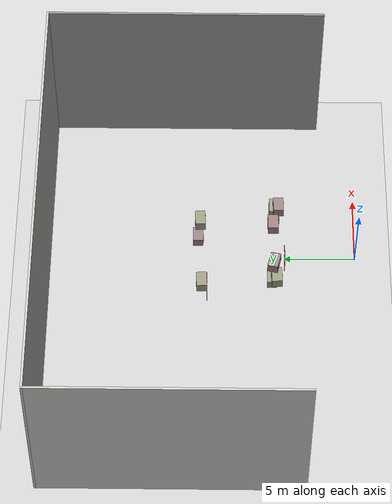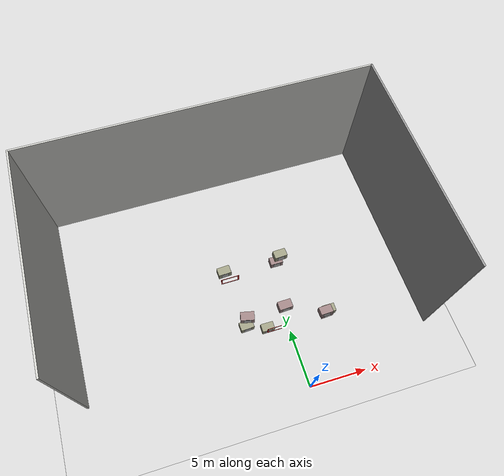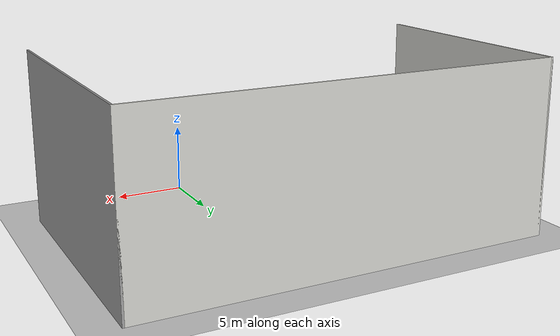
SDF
<sdf version="1.5">
 <world name="default">
  <light name="sun" type="directional">
   <pose>0 0 10 0 -0 0</pose>
   <diffuse>0.8 0.8 0.8 1</diffuse>
   <specular>0.2 0.2 0.2 1</specular>
   <attenuation>
    <range>1000</range>
    <constant>0.9</constant>
    <linear>0.01</linear>
    <quadratic>0.001</quadratic>
   </attenuation>
   <direction>-0.5 0.1 -0.9</direction>
  </light>
  <model name="ground_plane">
   <static>1</static>
   <link name="link">
    <collision name="collision">
     <geometry><plane><normal>0 0 1</normal><size>100 100</size></plane></geometry>
     <surface><friction><ode><mu>100</mu><mu2>50</mu2></ode></friction></surface>
    </collision>
    <visual name="visual">
     <cast_shadows>0</cast_shadows>
     <geometry><plane><normal>0 0 1</normal><size>100 100</size></plane></geometry>
     <material>
      <script><uri>file://media/materials/scripts/gazebo.material</uri><name>Gazebo/Grey</name></script>
     </material>
    </visual>
   </link>
  </model>
  <gravity>0 0 -9.8</gravity>
  <magnetic_field>6e-06 2.3e-05 -4.2e-05</magnetic_field>
  <atmosphere type="adiabatic"/>
  <physics name="default_physics" default="0" type="ode">
   <max_step_size>0.001</max_step_size>
   <real_time_factor>1</real_time_factor>
   <real_time_update_rate>1000</real_time_update_rate>
  </physics>
  <scene><ambient>0.4 0.4 0.4 1</ambient><background>0.7 0.7 0.7 1</background><shadows>1</shadows></scene>
  <spherical_coordinates>
   <surface_model>EARTH_WGS84</surface_model>
   <latitude_deg>0</latitude_deg>
   <longitude_deg>0</longitude_deg>
   <elevation>0</elevation>
   <heading_deg>0</heading_deg>
  </spherical_coordinates>
  <model name="medium_box_qr2">
   <pose>-1.87258 5.8039 0.349577 -0.001201 -0 3.13683</pose>
   <static>0</static>
   <link name="link">
    <inertial>
     <mass>30</mass>
     <inertia><ixx>1</ixx><ixy>0</ixy><ixz>0</ixz><iyy>1</iyy><iyz>0</iyz><izz>1</izz></inertia>
    </inertial>
    <collision name="collision">
     <geometry><box><size>1.1 0.7 0.7</size></box></geometry>
     <surface><contact><ode><max_vel>0.1</max_vel><min_depth>0.001</min_depth></ode></contact></surface>
    </collision>
    <visual name="visual">
     <geometry><box><size>1.1 0.7 0.7</size></box></geometry>
     <material>
      <lighting>1</lighting>
      <script><uri>file://media/materials/scripts/gazebo.material</uri><name>Gazebo/Grey</name></script>
      <shader type="pixel"><normal_map>__default__</normal_map></shader>
      <ambient>0.6 0.6 0.5 1</ambient>
      <diffuse>0.3 0.3 0.3 1</diffuse>
      <specular>0.01 0.01 0.01 1</specular>
      <emissive>0 0 0 1</emissive>
     </material>
    </visual>
    <visual name="visual_qr">
     <pose>0 0.36 0 0 -0 0</pose>
     <geometry><box><size>0.6 0.005 0.6</size></box></geometry>
     <material>
      <script>
       <uri>model://medium_box_qr2/materials/scripts</uri>
       <uri>model://medium_box_qr2/materials/textures</uri>
       <name>QR_code/qr1</name>
      </script>
     </material>
    </visual>
   </link>
  </model>
  <model name="medium_box_qr">
   <pose>3.13645 5.36923 1.91264 4e-06 -0.001814 -3.10671</pose>
   <static>0</static>
   <link name="link">
    <inertial>
     <mass>30</mass>
     <inertia><ixx>1</ixx><ixy>0</ixy><ixz>0</ixz><iyy>1</iyy><iyz>0</iyz><izz>1</izz></inertia>
    </inertial>
    <collision name="collision">
     <geometry><box><size>1.1 0.7 0.7</size></box></geometry>
     <surface><contact><ode><max_vel>0.1</max_vel><min_depth>0.001</min_depth></ode></contact></surface>
    </collision>
    <visual name="visual">
     <geometry><box><size>1.1 0.7 0.7</size></box></geometry>
     <material>
      <lighting>1</lighting>
      <script><uri>file://media/materials/scripts/gazebo.material</uri><name>Gazebo/Grey</name></script>
      <shader type="pixel"><normal_map>__default__</normal_map></shader>
      <ambient>0.6 0.5 0.5 1</ambient>
      <diffuse>0.3 0.3 0.3 1</diffuse>
      <specular>0.01 0.01 0.01 1</specular>
      <emissive>0 0 0 1</emissive>
     </material>
    </visual>
    <visual name="visual_qr">
     <pose>0 0.36 0 0 -0 0</pose>
     <geometry><box><size>0.6 0.005 0.6</size></box></geometry>
     <material>
      <script>
       <uri>model://medium_box_qr/materials/scripts</uri>
       <uri>model://medium_box_qr/materials/textures</uri>
       <name>QR_code/qr2</name>
      </script>
     </material>
    </visual>
   </link>
  </model>
  <model name="medium_box_qr2_clone">
   <pose>-3.9512 5.59643 3.56252 2.3e-05 1.6e-05 -3.09418</pose>
   <static>0</static>
   <link name="link">
    <inertial>
     <mass>30</mass>
     <inertia><ixx>1</ixx><ixy>0</ixy><ixz>0</ixz><iyy>1</iyy><iyz>0</iyz><izz>1</izz></inertia>
    </inertial>
    <collision name="collision">
     <geometry><box><size>1.1 0.7 0.7</size></box></geometry>
     <surface><contact><ode><max_vel>0.1</max_vel><min_depth>0.001</min_depth></ode></contact></surface>
    </collision>
    <visual name="visual">
     <geometry><box><size>1.1 0.7 0.7</size></box></geometry>
     <material>
      <lighting>1</lighting>
      <script><uri>file://media/materials/scripts/gazebo.material</uri><name>Gazebo/Grey</name></script>
      <shader type="pixel"><normal_map>__default__</normal_map></shader>
      <ambient>0.6 0.6 0.5 1</ambient>
      <diffuse>0.3 0.3 0.3 1</diffuse>
      <specular>0.01 0.01 0.01 1</specular>
      <emissive>0 0 0 1</emissive>
     </material>
    </visual>
    <visual name="visual_qr">
     <pose>0 0.36 0 0 -0 0</pose>
     <geometry><box><size>0.6 0.005 0.6</size></box></geometry>
     <material>
      <script>
       <uri>model://medium_box_qr2/materials/scripts</uri>
       <uri>model://medium_box_qr2/materials/textures</uri>
       <name>QR_code/qr1</name>
      </script>
     </material>
    </visual>
   </link>
  </model>
  <model name="medium_box_qr_clone">
   <pose>-0.705526 5.86607 5.15966 -0.000103 -0.006383 -3.11323</pose>
   <static>0</static>
   <link name="link">
    <inertial>
     <mass>30</mass>
     <inertia><ixx>1</ixx><ixy>0</ixy><ixz>0</ixz><iyy>1</iyy><iyz>0</iyz><izz>1</izz></inertia>
    </inertial>
    <collision name="collision">
     <geometry><box><size>1.1 0.7 0.7</size></box></geometry>
     <surface><contact><ode><max_vel>0.1</max_vel><min_depth>0.001</min_depth></ode></contact></surface>
    </collision>
    <visual name="visual">
     <geometry><box><size>1.1 0.7 0.7</size></box></geometry>
     <material>
      <lighting>1</lighting>
      <script><uri>file://media/materials/scripts/gazebo.material</uri><name>Gazebo/Grey</name></script>
      <shader type="pixel"><normal_map>__default__</normal_map></shader>
      <ambient>0.6 0.5 0.5 1</ambient>
      <diffuse>0.3 0.3 0.3 1</diffuse>
      <specular>0.01 0.01 0.01 1</specular>
      <emissive>0 0 0 1</emissive>
     </material>
    </visual>
    <visual name="visual_qr">
     <pose>0 0.36 0 0 -0 0</pose>
     <geometry><box><size>0.6 0.005 0.6</size></box></geometry>
     <material>
      <script>
       <uri>model://medium_box_qr/materials/scripts</uri>
       <uri>model://medium_box_qr/materials/textures</uri>
       <name>QR_code/qr2</name>
      </script>
     </material>
    </visual>
   </link>
  </model>
  <model name="medium_box_qr2_clone_clone">
   <pose>3.66463 5.64116 1.04932 0.000219 -0.00117 3.13733</pose>
   <static>0</static>
   <link name="link">
    <inertial>
     <mass>30</mass>
     <inertia><ixx>1</ixx><ixy>0</ixy><ixz>0</ixz><iyy>1</iyy><iyz>0</iyz><izz>1</izz></inertia>
    </inertial>
    <collision name="collision">
     <geometry><box><size>1.1 0.7 0.7</size></box></geometry>
     <surface><contact><ode><max_vel>0.1</max_vel><min_depth>0.001</min_depth></ode></contact></surface>
    </collision>
    <visual name="visual">
     <geometry><box><size>1.1 0.7 0.7</size></box></geometry>
     <material>
      <lighting>1</lighting>
      <script><uri>file://media/materials/scripts/gazebo.material</uri><name>Gazebo/Grey</name></script>
      <shader type="pixel"><normal_map>__default__</normal_map></shader>
      <ambient>0.6 0.6 0.5 1</ambient>
      <diffuse>0.3 0.3 0.3 1</diffuse>
      <specular>0.01 0.01 0.01 1</specular>
      <emissive>0 0 0 1</emissive>
     </material>
    </visual>
    <visual name="visual_qr">
     <pose>0 0.36 0 0 -0 0</pose>
     <geometry><box><size>0.6 0.005 0.6</size></box></geometry>
     <material>
      <script>
       <uri>model://medium_box_qr2/materials/scripts</uri>
       <uri>model://medium_box_qr2/materials/textures</uri>
       <name>QR_code/qr1</name>
      </script>
     </material>
    </visual>
   </link>
  </model>
  <model name="medium_box_qr_clone_0">
   <pose>3.56881 5.62958 0.349497 0 -0.000904 -3.10649</pose>
   <static>0</static>
   <link name="link">
    <inertial>
     <mass>30</mass>
     <inertia><ixx>1</ixx><ixy>0</ixy><ixz>0</ixz><iyy>1</iyy><iyz>0</iyz><izz>1</izz></inertia>
    </inertial>
    <collision name="collision">
     <geometry><box><size>1.1 0.7 0.7</size></box></geometry>
     <surface><contact><ode><max_vel>0.1</max_vel><min_depth>0.001</min_depth></ode></contact></surface>
    </collision>
    <visual name="visual">
     <geometry><box><size>1.1 0.7 0.7</size></box></geometry>
     <material>
      <lighting>1</lighting>
      <script><uri>file://media/materials/scripts/gazebo.material</uri><name>Gazebo/Grey</name></script>
      <shader type="pixel"><normal_map>__default__</normal_map></shader>
      <ambient>0.6 0.5 0.5 1</ambient>
      <diffuse>0.3 0.3 0.3 1</diffuse>
      <specular>0.01 0.01 0.01 1</specular>
      <emissive>0 0 0 1</emissive>
     </material>
    </visual>
    <visual name="visual_qr">
     <pose>0 0.36 0 0 -0 0</pose>
     <geometry><box><size>0.6 0.005 0.6</size></box></geometry>
     <material>
      <script>
       <uri>model://medium_box_qr/materials/scripts</uri>
       <uri>model://medium_box_qr/materials/textures</uri>
       <name>QR_code/qr2</name>
      </script>
     </material>
    </visual>
   </link>
  </model>
  <model name="medium_box_qr_clone_clone">
   <pose>-3.8541 5.82124 5.16013 -0.000177 7.3e-05 2.9171</pose>
   <static>0</static>
   <link name="link">
    <inertial>
     <mass>30</mass>
     <inertia><ixx>1</ixx><ixy>0</ixy><ixz>0</ixz><iyy>1</iyy><iyz>0</iyz><izz>1</izz></inertia>
    </inertial>
    <collision name="collision">
     <geometry><box><size>1.1 0.7 0.7</size></box></geometry>
     <surface><contact><ode><max_vel>0.1</max_vel><min_depth>0.001</min_depth></ode></contact></surface>
    </collision>
    <visual name="visual">
     <geometry><box><size>1.1 0.7 0.7</size></box></geometry>
     <material>
      <lighting>1</lighting>
      <script><uri>file://media/materials/scripts/gazebo.material</uri><name>Gazebo/Grey</name></script>
      <shader type="pixel"><normal_map>__default__</normal_map></shader>
      <ambient>0.6 0.5 0.5 1</ambient>
      <diffuse>0.3 0.3 0.3 1</diffuse>
      <specular>0.01 0.01 0.01 1</specular>
      <emissive>0 0 0 1</emissive>
     </material>
    </visual>
    <visual name="visual_qr">
     <pose>0 0.36 0 0 -0 0</pose>
     <geometry><box><size>0.6 0.005 0.6</size></box></geometry>
     <material>
      <script>
       <uri>model://medium_box_qr/materials/scripts</uri>
       <uri>model://medium_box_qr/materials/textures</uri>
       <name>QR_code/qr2</name>
      </script>
     </material>
    </visual>
   </link>
  </model>
  <model name="medium_box_qr2_clone_clone_0">
   <pose>-4.36505 10.684 3.57072 5e-06 0.000123 -3.09425</pose>
   <static>0</static>
   <link name="link">
    <inertial>
     <mass>30</mass>
     <inertia><ixx>1</ixx><ixy>0</ixy><ixz>0</ixz><iyy>1</iyy><iyz>0</iyz><izz>1</izz></inertia>
    </inertial>
    <collision name="collision">
     <geometry><box><size>1.1 0.7 0.7</size></box></geometry>
     <surface><contact><ode><max_vel>0.1</max_vel><min_depth>0.001</min_depth></ode></contact></surface>
    </collision>
    <visual name="visual">
     <geometry><box><size>1.1 0.7 0.7</size></box></geometry>
     <material>
      <lighting>1</lighting>
      <script><uri>file://media/materials/scripts/gazebo.material</uri><name>Gazebo/Grey</name></script>
      <shader type="pixel"><normal_map>__default__</normal_map></shader>
      <ambient>0.6 0.6 0.5 1</ambient>
      <diffuse>0.3 0.3 0.3 1</diffuse>
      <specular>0.01 0.01 0.01 1</specular>
      <emissive>0 0 0 1</emissive>
     </material>
    </visual>
    <visual name="visual_qr">
     <pose>0 0.36 0 0 -0 0</pose>
     <geometry><box><size>0.6 0.005 0.6</size></box></geometry>
     <material>
      <script>
       <uri>model://medium_box_qr2/materials/scripts</uri>
       <uri>model://medium_box_qr2/materials/textures</uri>
       <name>QR_code/qr1</name>
      </script>
     </material>
    </visual>
   </link>
  </model>
  <model name="medium_box_qr2_clone_clone_1">
   <pose>0.727413 10.8127 3.57076 6e-06 3.8e-05 -3.09418</pose>
   <static>0</static>
   <link name="link">
    <inertial>
     <mass>30</mass>
     <inertia><ixx>1</ixx><ixy>0</ixy><ixz>0</ixz><iyy>1</iyy><iyz>0</iyz><izz>1</izz></inertia>
    </inertial>
    <collision name="collision">
     <geometry><box><size>1.1 0.7 0.7</size></box></geometry>
     <surface><contact><ode><max_vel>0.1</max_vel><min_depth>0.001</min_depth></ode></contact></surface>
    </collision>
    <visual name="visual">
     <geometry><box><size>1.1 0.7 0.7</size></box></geometry>
     <material>
      <lighting>1</lighting>
      <script><uri>file://media/materials/scripts/gazebo.material</uri><name>Gazebo/Grey</name></script>
      <shader type="pixel"><normal_map>__default__</normal_map></shader>
      <ambient>0.6 0.6 0.5 1</ambient>
      <diffuse>0.3 0.3 0.3 1</diffuse>
      <specular>0.01 0.01 0.01 1</specular>
      <emissive>0 0 0 1</emissive>
     </material>
    </visual>
    <visual name="visual_qr">
     <pose>0 0.36 0 0 -0 0</pose>
     <geometry><box><size>0.6 0.005 0.6</size></box></geometry>
     <material>
      <script>
       <uri>model://medium_box_qr2/materials/scripts</uri>
       <uri>model://medium_box_qr2/materials/textures</uri>
       <name>QR_code/qr1</name>
      </script>
     </material>
    </visual>
   </link>
  </model>
  <model name="medium_box_qr_clone_0_clone">
   <pose>0.530844 10.9574 1.92063 3.7e-05 0.004132 3.13898</pose>
   <static>0</static>
   <link name="link">
    <inertial>
     <mass>30</mass>
     <inertia><ixx>1</ixx><ixy>0</ixy><ixz>0</ixz><iyy>1</iyy><iyz>0</iyz><izz>1</izz></inertia>
    </inertial>
    <collision name="collision">
     <geometry><box><size>1.1 0.7 0.7</size></box></geometry>
     <surface><contact><ode><max_vel>0.1</max_vel><min_depth>0.001</min_depth></ode></contact></surface>
    </collision>
    <visual name="visual">
     <geometry><box><size>1.1 0.7 0.7</size></box></geometry>
     <material>
      <lighting>1</lighting>
      <script><uri>file://media/materials/scripts/gazebo.material</uri><name>Gazebo/Grey</name></script>
      <shader type="pixel"><normal_map>__default__</normal_map></shader>
      <ambient>0.6 0.5 0.5 1</ambient>
      <diffuse>0.3 0.3 0.3 1</diffuse>
      <specular>0.01 0.01 0.01 1</specular>
      <emissive>0 0 0 1</emissive>
     </material>
    </visual>
    <visual name="visual_qr">
     <pose>0 0.36 0 0 -0 0</pose>
     <geometry><box><size>0.6 0.005 0.6</size></box></geometry>
     <material>
      <script>
       <uri>model://medium_box_qr/materials/scripts</uri>
       <uri>model://medium_box_qr/materials/textures</uri>
       <name>QR_code/qr2</name>
      </script>
     </material>
    </visual>
   </link>
  </model>
  <model name="backwall">
   <pose>-3.23888 11.9377 0 0 -0 0</pose>
   <link name="Wall_16">
    <collision name="Wall_16_Collision">
     <geometry><box><size>30 0.15 12.5</size></box></geometry>
     <pose>0 0 6.25 0 -0 0</pose>
    </collision>
    <visual name="Wall_16_Visual">
     <pose>0 0 6.25 0 -0 0</pose>
     <geometry><box><size>30 0.15 12.5</size></box></geometry>
     <material>
      <script><uri>file://media/materials/scripts/gazebo.material</uri><name>Gazebo/CeilingTiled</name></script>
      <ambient>1 1 1 1</ambient>
     </material>
     <meta><layer>0</layer></meta>
    </visual>
    <pose>0 9.425 0 0 -0 0</pose>
   </link>
   <link name="Wall_17">
    <collision name="Wall_17_Collision">
     <geometry><box><size>19 0.15 12.5</size></box></geometry>
     <pose>0 0 6.25 0 -0 0</pose>
    </collision>
    <visual name="Wall_17_Visual">
     <pose>0 0 6.25 0 -0 0</pose>
     <geometry><box><size>19 0.15 12.5</size></box></geometry>
     <material>
      <script><uri>file://media/materials/scripts/gazebo.material</uri><name>Gazebo/Grey</name></script>
      <ambient>1 1 1 1</ambient>
     </material>
     <meta><layer>0</layer></meta>
    </visual>
    <pose>14.925 0 0 0 0 -1.5708</pose>
   </link>
   <link name="Wall_20">
    <collision name="Wall_20_Collision">
     <geometry><box><size>17.75 0.15 12.5</size></box></geometry>
     <pose>0 0 6.25 0 -0 0</pose>
    </collision>
    <visual name="Wall_20_Visual">
     <pose>0 0 6.25 0 -0 0</pose>
     <geometry><box><size>17.75 0.15 12.5</size></box></geometry>
     <material>
      <script><uri>file://media/materials/scripts/gazebo.material</uri><name>Gazebo/CeilingTiled</name></script>
      <ambient>1 1 1 1</ambient>
     </material>
     <meta><layer>0</layer></meta>
    </visual>
    <pose>-14.925 0.625 0 0 0 -1.5708</pose>
   </link>
   <static>1</static>
  </model>
  <model name="frame_0">
   <pose>-3.9256 10.3179 1.8502 0 -0 0</pose>
   <static>1</static>
   <link name="top">
    <collision name="collision_t">
     <pose>0 0 0.9 0 -0 0</pose>
     <geometry><box><size>1.6 0.02 0.1</size></box></geometry>
     <surface><contact><ode><max_vel>0.1</max_vel><min_depth>0.001</min_depth></ode></contact></surface>
    </collision>
    <visual name="visual_t">
     <pose>0 0 0.9 0 -0 0</pose>
     <geometry><box><size>1.6 0.02 0.1</size></box></geometry>
     <material>
      <lighting>1</lighting>
      <script><uri>file://media/materials/scripts/gazebo.material</uri><name>Gazebo/Red</name></script>
      <shader type="pixel"><normal_map>__default__</normal_map></shader>
     </material>
    </visual>
    <collision name="collision_b">
     <geometry><box><size>1.6 0.02 0.1</size></box></geometry>
     <surface><contact><ode><max_vel>0.1</max_vel><min_depth>0.001</min_depth></ode></contact></surface>
    </collision>
    <visual name="visual_b">
     <geometry><box><size>1.6 0.02 0.1</size></box></geometry>
     <material>
      <lighting>1</lighting>
      <script><uri>file://media/materials/scripts/gazebo.material</uri><name>Gazebo/Red</name></script>
      <shader type="pixel"><normal_map>__default__</normal_map></shader>
     </material>
    </visual>
    <collision name="collision_l">
     <pose>0.75 0 0.45 0 -0 0</pose>
     <geometry><box><size>0.1 0.02 0.8</size></box></geometry>
     <surface><contact><ode><max_vel>0.1</max_vel><min_depth>0.001</min_depth></ode></contact></surface>
    </collision>
    <visual name="visual_l">
     <pose>0.75 0 0.45 0 -0 0</pose>
     <geometry><box><size>0.1 0.02 0.8</size></box></geometry>
     <material>
      <lighting>1</lighting>
      <script><uri>file://media/materials/scripts/gazebo.material</uri><name>Gazebo/Red</name></script>
      <shader type="pixel"><normal_map>__default__</normal_map></shader>
     </material>
    </visual>
    <collision name="collision_r">
     <pose>-0.75 0 0.45 0 -0 0</pose>
     <geometry><box><size>0.1 0.02 0.8</size></box></geometry>
     <surface><contact><ode><max_vel>0.1</max_vel><min_depth>0.001</min_depth></ode></contact></surface>
    </collision>
    <visual name="visual_r">
     <pose>-0.75 0 0.45 0 -0 0</pose>
     <geometry><box><size>0.1 0.02 0.8</size></box></geometry>
     <material>
      <lighting>1</lighting>
      <script><uri>file://media/materials/scripts/gazebo.material</uri><name>Gazebo/Red</name></script>
      <shader type="pixel"><normal_map>__default__</normal_map></shader>
     </material>
    </visual>
   </link>
  </model>
  <model name="frame">
   <pose>-1.46458 5.00499 1.89479 0 -0 0</pose>
   <static>1</static>
   <link name="top">
    <collision name="collision_t">
     <pose>0 0 0.9 0 -0 0</pose>
     <geometry><box><size>1.6 0.02 0.1</size></box></geometry>
     <surface><contact><ode><max_vel>0.1</max_vel><min_depth>0.001</min_depth></ode></contact></surface>
    </collision>
    <visual name="visual_t">
     <pose>0 0 0.9 0 -0 0</pose>
     <geometry><box><size>1.6 0.02 0.1</size></box></geometry>
     <material>
      <lighting>1</lighting>
      <script><uri>file://media/materials/scripts/gazebo.material</uri><name>Gazebo/Red</name></script>
      <shader type="pixel"><normal_map>__default__</normal_map></shader>
     </material>
    </visual>
    <collision name="collision_b">
     <geometry><box><size>1.6 0.02 0.1</size></box></geometry>
     <surface><contact><ode><max_vel>0.1</max_vel><min_depth>0.001</min_depth></ode></contact></surface>
    </collision>
    <visual name="visual_b">
     <geometry><box><size>1.6 0.02 0.1</size></box></geometry>
     <material>
      <lighting>1</lighting>
      <script><uri>file://media/materials/scripts/gazebo.material</uri><name>Gazebo/Red</name></script>
      <shader type="pixel"><normal_map>__default__</normal_map></shader>
     </material>
    </visual>
    <collision name="collision_l">
     <pose>0.75 0 0.45 0 -0 0</pose>
     <geometry><box><size>0.1 0.02 0.8</size></box></geometry>
     <surface><contact><ode><max_vel>0.1</max_vel><min_depth>0.001</min_depth></ode></contact></surface>
    </collision>
    <visual name="visual_l">
     <pose>0.75 0 0.45 0 -0 0</pose>
     <geometry><box><size>0.1 0.02 0.8</size></box></geometry>
     <material>
      <lighting>1</lighting>
      <script><uri>file://media/materials/scripts/gazebo.material</uri><name>Gazebo/Red</name></script>
      <shader type="pixel"><normal_map>__default__</normal_map></shader>
     </material>
    </visual>
    <collision name="collision_r">
     <pose>-0.75 0 0.45 0 -0 0</pose>
     <geometry><box><size>0.1 0.02 0.8</size></box></geometry>
     <surface><contact><ode><max_vel>0.1</max_vel><min_depth>0.001</min_depth></ode></contact></surface>
    </collision>
    <visual name="visual_r">
     <pose>-0.75 0 0.45 0 -0 0</pose>
     <geometry><box><size>0.1 0.02 0.8</size></box></geometry>
     <material>
      <lighting>1</lighting>
      <script><uri>file://media/materials/scripts/gazebo.material</uri><name>Gazebo/Red</name></script>
      <shader type="pixel"><normal_map>__default__</normal_map></shader>
     </material>
    </visual>
   </link>
  </model>
 </world>
</sdf>
